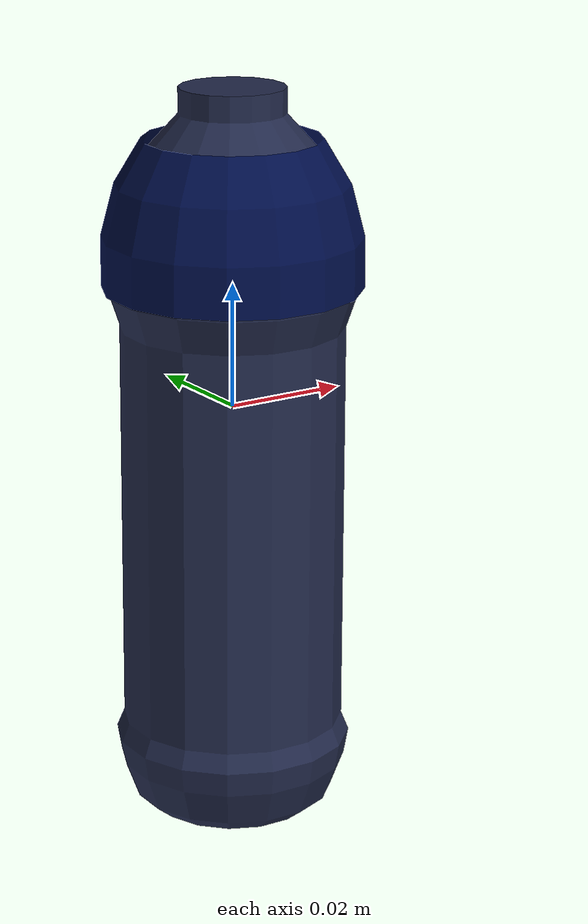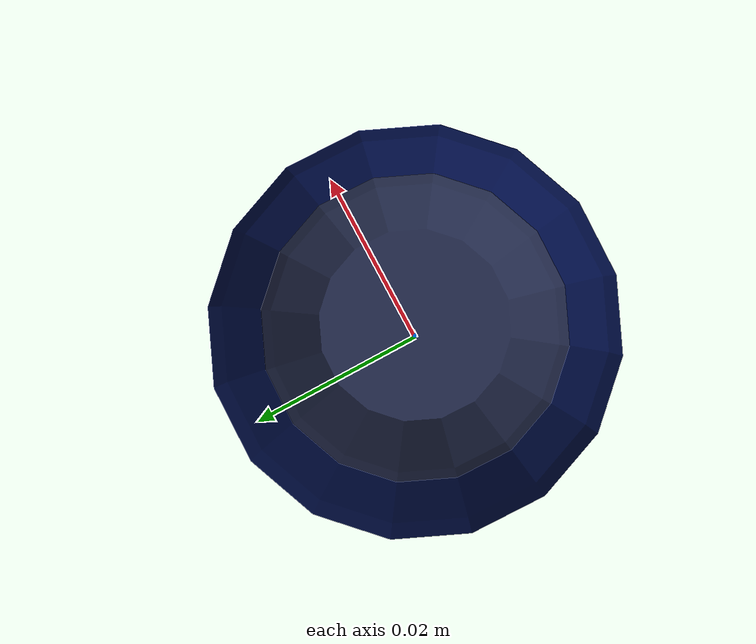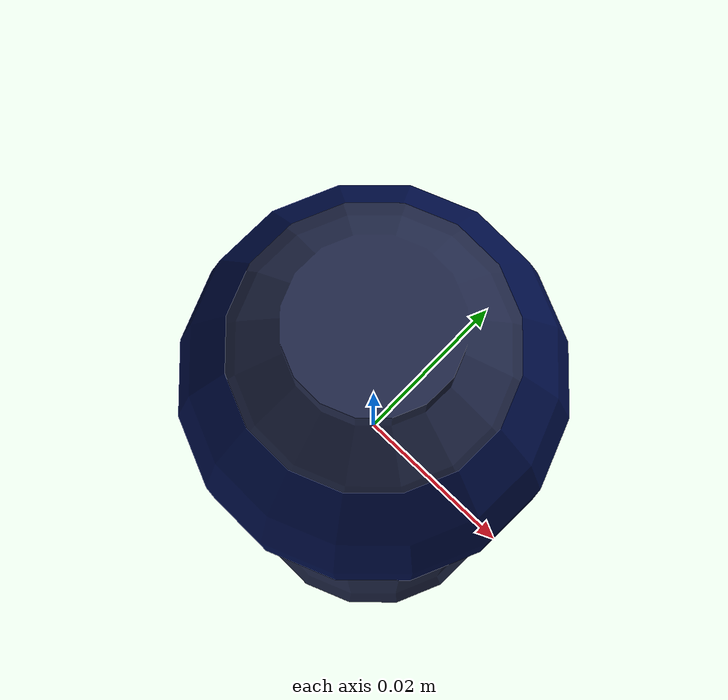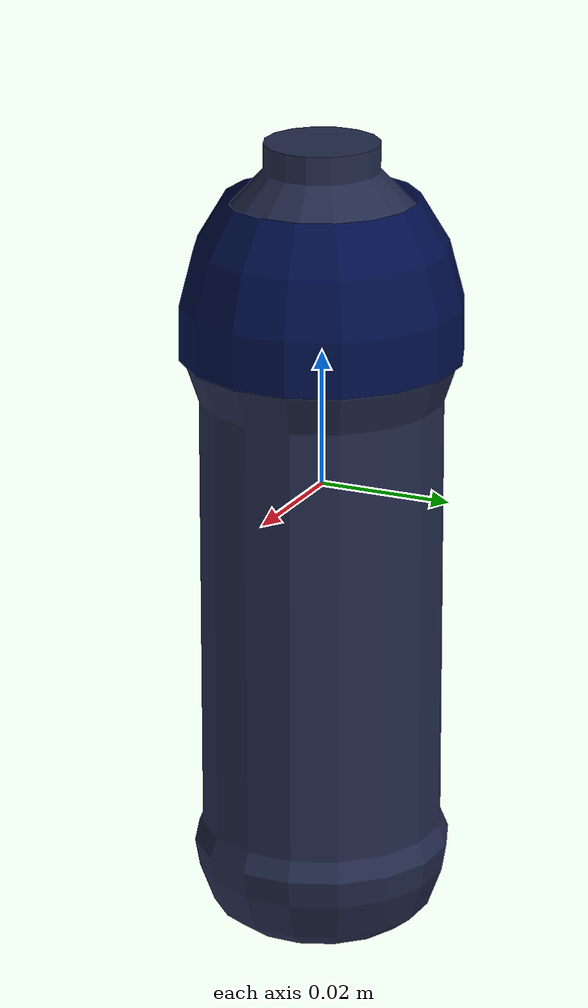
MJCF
<mujoco model="bottled_water_3">
  <asset>
    <mesh file="visual/model_normalized_0.obj" name="model_normalized_0_vis" scale="0.13999999999999999 0.13999999999999999 0.13999999999999999" refquat="1.0 0.0 0.0 0.0" />
    <mesh file="visual/model_normalized_1.obj" name="model_normalized_1_vis" scale="0.13999999999999999 0.13999999999999999 0.13999999999999999" refquat="1.0 0.0 0.0 0.0" />
    <mesh file="collision/model_normalized_collision_22.obj" name="model_normalized_collision_22._coll" scale="0.13999999999999999 0.13999999999999999 0.13999999999999999" refquat="1.0 0.0 0.0 0.0" />
    <mesh file="collision/model_normalized_collision_23.obj" name="model_normalized_collision_23._coll" scale="0.13999999999999999 0.13999999999999999 0.13999999999999999" refquat="1.0 0.0 0.0 0.0" />
    <mesh file="collision/model_normalized_collision_21.obj" name="model_normalized_collision_21._coll" scale="0.13999999999999999 0.13999999999999999 0.13999999999999999" refquat="1.0 0.0 0.0 0.0" />
    <mesh file="collision/model_normalized_collision_20.obj" name="model_normalized_collision_20._coll" scale="0.13999999999999999 0.13999999999999999 0.13999999999999999" refquat="1.0 0.0 0.0 0.0" />
    <mesh file="collision/model_normalized_collision_24.obj" name="model_normalized_collision_24._coll" scale="0.13999999999999999 0.13999999999999999 0.13999999999999999" refquat="1.0 0.0 0.0 0.0" />
    <mesh file="collision/model_normalized_collision_30.obj" name="model_normalized_collision_30._coll" scale="0.13999999999999999 0.13999999999999999 0.13999999999999999" refquat="1.0 0.0 0.0 0.0" />
    <mesh file="collision/model_normalized_collision_18.obj" name="model_normalized_collision_18._coll" scale="0.13999999999999999 0.13999999999999999 0.13999999999999999" refquat="1.0 0.0 0.0 0.0" />
    <mesh file="collision/model_normalized_collision_19.obj" name="model_normalized_collision_19._coll" scale="0.13999999999999999 0.13999999999999999 0.13999999999999999" refquat="1.0 0.0 0.0 0.0" />
    <mesh file="collision/model_normalized_collision_31.obj" name="model_normalized_collision_31._coll" scale="0.13999999999999999 0.13999999999999999 0.13999999999999999" refquat="1.0 0.0 0.0 0.0" />
    <mesh file="collision/model_normalized_collision_25.obj" name="model_normalized_collision_25._coll" scale="0.13999999999999999 0.13999999999999999 0.13999999999999999" refquat="1.0 0.0 0.0 0.0" />
    <mesh file="collision/model_normalized_collision_27.obj" name="model_normalized_collision_27._coll" scale="0.13999999999999999 0.13999999999999999 0.13999999999999999" refquat="1.0 0.0 0.0 0.0" />
    <mesh file="collision/model_normalized_collision_26.obj" name="model_normalized_collision_26._coll" scale="0.13999999999999999 0.13999999999999999 0.13999999999999999" refquat="1.0 0.0 0.0 0.0" />
    <mesh file="collision/model_normalized_collision_9.obj" name="model_normalized_collision_9._coll" scale="0.13999999999999999 0.13999999999999999 0.13999999999999999" refquat="1.0 0.0 0.0 0.0" />
    <mesh file="collision/model_normalized_collision_8.obj" name="model_normalized_collision_8._coll" scale="0.13999999999999999 0.13999999999999999 0.13999999999999999" refquat="1.0 0.0 0.0 0.0" />
    <mesh file="collision/model_normalized_collision_6.obj" name="model_normalized_collision_6._coll" scale="0.13999999999999999 0.13999999999999999 0.13999999999999999" refquat="1.0 0.0 0.0 0.0" />
    <mesh file="collision/model_normalized_collision_7.obj" name="model_normalized_collision_7._coll" scale="0.13999999999999999 0.13999999999999999 0.13999999999999999" refquat="1.0 0.0 0.0 0.0" />
    <mesh file="collision/model_normalized_collision_5.obj" name="model_normalized_collision_5._coll" scale="0.13999999999999999 0.13999999999999999 0.13999999999999999" refquat="1.0 0.0 0.0 0.0" />
    <mesh file="collision/model_normalized_collision_4.obj" name="model_normalized_collision_4._coll" scale="0.13999999999999999 0.13999999999999999 0.13999999999999999" refquat="1.0 0.0 0.0 0.0" />
    <mesh file="collision/model_normalized_collision_0.obj" name="model_normalized_collision_0._coll" scale="0.13999999999999999 0.13999999999999999 0.13999999999999999" refquat="1.0 0.0 0.0 0.0" />
    <mesh file="collision/model_normalized_collision_1.obj" name="model_normalized_collision_1._coll" scale="0.13999999999999999 0.13999999999999999 0.13999999999999999" refquat="1.0 0.0 0.0 0.0" />
    <mesh file="collision/model_normalized_collision_3.obj" name="model_normalized_collision_3._coll" scale="0.13999999999999999 0.13999999999999999 0.13999999999999999" refquat="1.0 0.0 0.0 0.0" />
    <mesh file="collision/model_normalized_collision_2.obj" name="model_normalized_collision_2._coll" scale="0.13999999999999999 0.13999999999999999 0.13999999999999999" refquat="1.0 0.0 0.0 0.0" />
    <mesh file="collision/model_normalized_collision_17.obj" name="model_normalized_collision_17._coll" scale="0.13999999999999999 0.13999999999999999 0.13999999999999999" refquat="1.0 0.0 0.0 0.0" />
    <mesh file="collision/model_normalized_collision_16.obj" name="model_normalized_collision_16._coll" scale="0.13999999999999999 0.13999999999999999 0.13999999999999999" refquat="1.0 0.0 0.0 0.0" />
    <mesh file="collision/model_normalized_collision_28.obj" name="model_normalized_collision_28._coll" scale="0.13999999999999999 0.13999999999999999 0.13999999999999999" refquat="1.0 0.0 0.0 0.0" />
    <mesh file="collision/model_normalized_collision_14.obj" name="model_normalized_collision_14._coll" scale="0.13999999999999999 0.13999999999999999 0.13999999999999999" refquat="1.0 0.0 0.0 0.0" />
    <mesh file="collision/model_normalized_collision_15.obj" name="model_normalized_collision_15._coll" scale="0.13999999999999999 0.13999999999999999 0.13999999999999999" refquat="1.0 0.0 0.0 0.0" />
    <mesh file="collision/model_normalized_collision_29.obj" name="model_normalized_collision_29._coll" scale="0.13999999999999999 0.13999999999999999 0.13999999999999999" refquat="1.0 0.0 0.0 0.0" />
    <mesh file="collision/model_normalized_collision_11.obj" name="model_normalized_collision_11._coll" scale="0.13999999999999999 0.13999999999999999 0.13999999999999999" refquat="1.0 0.0 0.0 0.0" />
    <mesh file="collision/model_normalized_collision_10.obj" name="model_normalized_collision_10._coll" scale="0.13999999999999999 0.13999999999999999 0.13999999999999999" refquat="1.0 0.0 0.0 0.0" />
    <mesh file="collision/model_normalized_collision_12.obj" name="model_normalized_collision_12._coll" scale="0.13999999999999999 0.13999999999999999 0.13999999999999999" refquat="1.0 0.0 0.0 0.0" />
    <mesh file="collision/model_normalized_collision_13.obj" name="model_normalized_collision_13._coll" scale="0.13999999999999999 0.13999999999999999 0.13999999999999999" refquat="1.0 0.0 0.0 0.0" />
    <material name="lambert2" specular="0.5" shininess="0.15999998099999999" rgba="0.000000 0.055700 0.291600 1.0" />
    <material name="lambert3" specular="0.5" shininess="0.15999998099999999" rgba="0.132860 0.163258 0.292000 1.0" />
  </asset>
  <worldbody>
    <body>
      <body name="object">
        <geom solimp="0.998 0.998 0.001" solref="0.001 1" density="1000" friction="0.95 0.3 0.1" type="mesh" mesh="model_normalized_0_vis" conaffinity="0" contype="0" group="1" material="lambert2" />
        <geom solimp="0.998 0.998 0.001" solref="0.001 1" density="1000" friction="0.95 0.3 0.1" type="mesh" mesh="model_normalized_1_vis" conaffinity="0" contype="0" group="1" material="lambert3" />
        <geom solimp="0.998 0.998 0.001" solref="0.001 1" density="1000" friction="0.95 0.3 0.1" type="mesh" mesh="model_normalized_collision_22._coll" group="0" rgba="0.8 0.8 0.8 0.0" />
        <geom solimp="0.998 0.998 0.001" solref="0.001 1" density="1000" friction="0.95 0.3 0.1" type="mesh" mesh="model_normalized_collision_23._coll" group="0" rgba="0.8 0.8 0.8 0.0" />
        <geom solimp="0.998 0.998 0.001" solref="0.001 1" density="1000" friction="0.95 0.3 0.1" type="mesh" mesh="model_normalized_collision_21._coll" group="0" rgba="0.8 0.8 0.8 0.0" />
        <geom solimp="0.998 0.998 0.001" solref="0.001 1" density="1000" friction="0.95 0.3 0.1" type="mesh" mesh="model_normalized_collision_20._coll" group="0" rgba="0.8 0.8 0.8 0.0" />
        <geom solimp="0.998 0.998 0.001" solref="0.001 1" density="1000" friction="0.95 0.3 0.1" type="mesh" mesh="model_normalized_collision_24._coll" group="0" rgba="0.8 0.8 0.8 0.0" />
        <geom solimp="0.998 0.998 0.001" solref="0.001 1" density="1000" friction="0.95 0.3 0.1" type="mesh" mesh="model_normalized_collision_30._coll" group="0" rgba="0.8 0.8 0.8 0.0" />
        <geom solimp="0.998 0.998 0.001" solref="0.001 1" density="1000" friction="0.95 0.3 0.1" type="mesh" mesh="model_normalized_collision_18._coll" group="0" rgba="0.8 0.8 0.8 0.0" />
        <geom solimp="0.998 0.998 0.001" solref="0.001 1" density="1000" friction="0.95 0.3 0.1" type="mesh" mesh="model_normalized_collision_19._coll" group="0" rgba="0.8 0.8 0.8 0.0" />
        <geom solimp="0.998 0.998 0.001" solref="0.001 1" density="1000" friction="0.95 0.3 0.1" type="mesh" mesh="model_normalized_collision_31._coll" group="0" rgba="0.8 0.8 0.8 0.0" />
        <geom solimp="0.998 0.998 0.001" solref="0.001 1" density="1000" friction="0.95 0.3 0.1" type="mesh" mesh="model_normalized_collision_25._coll" group="0" rgba="0.8 0.8 0.8 0.0" />
        <geom solimp="0.998 0.998 0.001" solref="0.001 1" density="1000" friction="0.95 0.3 0.1" type="mesh" mesh="model_normalized_collision_27._coll" group="0" rgba="0.8 0.8 0.8 0.0" />
        <geom solimp="0.998 0.998 0.001" solref="0.001 1" density="1000" friction="0.95 0.3 0.1" type="mesh" mesh="model_normalized_collision_26._coll" group="0" rgba="0.8 0.8 0.8 0.0" />
        <geom solimp="0.998 0.998 0.001" solref="0.001 1" density="1000" friction="0.95 0.3 0.1" type="mesh" mesh="model_normalized_collision_9._coll" group="0" rgba="0.8 0.8 0.8 0.0" />
        <geom solimp="0.998 0.998 0.001" solref="0.001 1" density="1000" friction="0.95 0.3 0.1" type="mesh" mesh="model_normalized_collision_8._coll" group="0" rgba="0.8 0.8 0.8 0.0" />
        <geom solimp="0.998 0.998 0.001" solref="0.001 1" density="1000" friction="0.95 0.3 0.1" type="mesh" mesh="model_normalized_collision_6._coll" group="0" rgba="0.8 0.8 0.8 0.0" />
        <geom solimp="0.998 0.998 0.001" solref="0.001 1" density="1000" friction="0.95 0.3 0.1" type="mesh" mesh="model_normalized_collision_7._coll" group="0" rgba="0.8 0.8 0.8 0.0" />
        <geom solimp="0.998 0.998 0.001" solref="0.001 1" density="1000" friction="0.95 0.3 0.1" type="mesh" mesh="model_normalized_collision_5._coll" group="0" rgba="0.8 0.8 0.8 0.0" />
        <geom solimp="0.998 0.998 0.001" solref="0.001 1" density="1000" friction="0.95 0.3 0.1" type="mesh" mesh="model_normalized_collision_4._coll" group="0" rgba="0.8 0.8 0.8 0.0" />
        <geom solimp="0.998 0.998 0.001" solref="0.001 1" density="1000" friction="0.95 0.3 0.1" type="mesh" mesh="model_normalized_collision_0._coll" group="0" rgba="0.8 0.8 0.8 0.0" />
        <geom solimp="0.998 0.998 0.001" solref="0.001 1" density="1000" friction="0.95 0.3 0.1" type="mesh" mesh="model_normalized_collision_1._coll" group="0" rgba="0.8 0.8 0.8 0.0" />
        <geom solimp="0.998 0.998 0.001" solref="0.001 1" density="1000" friction="0.95 0.3 0.1" type="mesh" mesh="model_normalized_collision_3._coll" group="0" rgba="0.8 0.8 0.8 0.0" />
        <geom solimp="0.998 0.998 0.001" solref="0.001 1" density="1000" friction="0.95 0.3 0.1" type="mesh" mesh="model_normalized_collision_2._coll" group="0" rgba="0.8 0.8 0.8 0.0" />
        <geom solimp="0.998 0.998 0.001" solref="0.001 1" density="1000" friction="0.95 0.3 0.1" type="mesh" mesh="model_normalized_collision_17._coll" group="0" rgba="0.8 0.8 0.8 0.0" />
        <geom solimp="0.998 0.998 0.001" solref="0.001 1" density="1000" friction="0.95 0.3 0.1" type="mesh" mesh="model_normalized_collision_16._coll" group="0" rgba="0.8 0.8 0.8 0.0" />
        <geom solimp="0.998 0.998 0.001" solref="0.001 1" density="1000" friction="0.95 0.3 0.1" type="mesh" mesh="model_normalized_collision_28._coll" group="0" rgba="0.8 0.8 0.8 0.0" />
        <geom solimp="0.998 0.998 0.001" solref="0.001 1" density="1000" friction="0.95 0.3 0.1" type="mesh" mesh="model_normalized_collision_14._coll" group="0" rgba="0.8 0.8 0.8 0.0" />
        <geom solimp="0.998 0.998 0.001" solref="0.001 1" density="1000" friction="0.95 0.3 0.1" type="mesh" mesh="model_normalized_collision_15._coll" group="0" rgba="0.8 0.8 0.8 0.0" />
        <geom solimp="0.998 0.998 0.001" solref="0.001 1" density="1000" friction="0.95 0.3 0.1" type="mesh" mesh="model_normalized_collision_29._coll" group="0" rgba="0.8 0.8 0.8 0.0" />
        <geom solimp="0.998 0.998 0.001" solref="0.001 1" density="1000" friction="0.95 0.3 0.1" type="mesh" mesh="model_normalized_collision_11._coll" group="0" rgba="0.8 0.8 0.8 0.0" />
        <geom solimp="0.998 0.998 0.001" solref="0.001 1" density="1000" friction="0.95 0.3 0.1" type="mesh" mesh="model_normalized_collision_10._coll" group="0" rgba="0.8 0.8 0.8 0.0" />
        <geom solimp="0.998 0.998 0.001" solref="0.001 1" density="1000" friction="0.95 0.3 0.1" type="mesh" mesh="model_normalized_collision_12._coll" group="0" rgba="0.8 0.8 0.8 0.0" />
        <geom solimp="0.998 0.998 0.001" solref="0.001 1" density="1000" friction="0.95 0.3 0.1" type="mesh" mesh="model_normalized_collision_13._coll" group="0" rgba="0.8 0.8 0.8 0.0" />
      </body>
      <site rgba="0 0 0 0" size="0.005" pos="0.00016527769999999996 0.0002475508000000001 -0.06993871219999999" name="bottom_site" />
      <site rgba="0 0 0 0" size="0.005" pos="0.00016527769999999996 0.0002475508000000001 0.06969611459999998" name="top_site" />
      <site rgba="0 0 0 0" size="0.005" pos="0.0255259396 0.026207021399999995 -0.00012129880000000091" name="horizontal_radius_site" />
    </body>
  </worldbody>
</mujoco>
